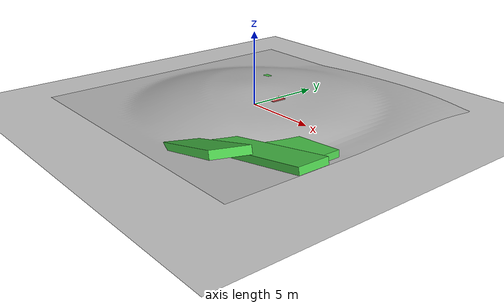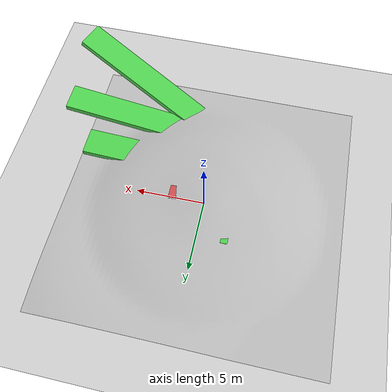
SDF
<?xml version="1.0"?>
<sdf version="1.6">
  <world name="test_world">
    <!-- Physics -->
    <physics type="ode">
      <max_step_size>0.001</max_step_size>
      <real_time_factor>1</real_time_factor>
      <real_time_update_rate>1000</real_time_update_rate>
    </physics>

    <!-- Lighting -->
    <include>
      <uri>model://sun</uri>
    </include>

    <!-- Ground Plane -->
    <include>
      <uri>model://ground_plane</uri>
    </include>

    <!-- Add some obstacles for testing -->
    <model name="box1">
      <pose>2 0 0.5 0 0 0</pose>
      <static>true</static>
      <link name="link">
        <collision name="collision">
          <geometry>
            <box>
              <size>1 1 1</size>
            </box>
          </geometry>
        </collision>
        <visual name="visual">
          <geometry>
            <box>
              <size>1 1 1</size>
            </box>
          </geometry>
          <material>
            <ambient>0.8 0.3 0.3 1</ambient>
            <diffuse>0.8 0.3 0.3 1</diffuse>
          </material>
        </visual>
      </link>
    </model>

    <model name="box2">
      <pose>-2 2 0.5 0 0 0</pose>
      <static>true</static>
      <link name="link">
        <collision name="collision">
          <geometry>
            <box>
              <size>0.5 2 1</size>
            </box>
          </geometry>
        </collision>
        <visual name="visual">
          <geometry>
            <box>
              <size>0.5 2 1</size>
            </box>
          </geometry>
          <material>
            <ambient>0.3 0.8 0.3 1</ambient>
            <diffuse>0.3 0.8 0.3 1</diffuse>
          </material>
        </visual>
      </link>
    </model>

    <model name="cylinder1">
      <pose>0 -3 0.5 0 0 0</pose>
      <static>true</static>
      <link name="link">
        <collision name="collision">
          <geometry>
            <cylinder>
              <radius>0.5</radius>
              <length>1</length>
            </cylinder>
          </geometry>
        </collision>
        <visual name="visual">
          <geometry>
            <cylinder>
              <radius>0.5</radius>
              <length>1</length>
            </cylinder>
          </geometry>
          <material>
            <ambient>0.3 0.3 0.8 1</ambient>
            <diffuse>0.3 0.3 0.8 1</diffuse>
          </material>
        </visual>
      </link>
    </model>

    <!--Ramps for height costmap testing-->
    <model name="ramp1">
      <pose>5.945485 -3.042967 0.071873 0.002354 -0.074159 -0.000175</pose>
      <static>true</static>
      <link name="link">
        <collision name="collision">
          <geometry>
            <box>
              <size>7.764390 2.003820 0.439108</size>
            </box>
          </geometry>
        </collision>
        <visual name="visual">
          <geometry>
            <box>
              <size>7.764390 2.003820 0.439108</size>
            </box>
          </geometry>
          <material>
            <ambient>0.3 0.8 0.3 1</ambient>
            <diffuse>0.3 0.8 0.3 1</diffuse>
          </material>
        </visual>
      </link>
    </model>

    <model name="ramp2">
      <pose>6.304507 -5.965746 0.530079 0.001361 -0.175217 -0.002422</pose>
      <static>true</static>
      <link name="link">
        <collision name="collision">
          <geometry>
            <box>
              <size>11.3662 2 0.439</size>
            </box>
          </geometry>
        </collision>
        <visual name="visual">
          <geometry>
            <box>
              <size>11.3662 2 0.439</size>
            </box>
          </geometry>
          <material>
            <ambient>0.3 0.8 0.3 1</ambient>
            <diffuse>0.3 0.8 0.3 1</diffuse>
          </material>
        </visual>
      </link>
    </model>

    <model name="ramp3">
      <pose>6.481330 -8.924390 1.500831 -0.005991 -0.347095 -0.347095</pose>
      <static>true</static>
      <link name="link">
        <collision name="collision">
          <geometry>
            <box>
              <size>11.3662 2 0.439</size>
            </box>
          </geometry>
        </collision>
        <visual name="visual">
          <geometry>
            <box>
              <size>11.3662 2 0.439</size>
            </box>
          </geometry>
          <material>
            <ambient>0.3 0.8 0.3 1</ambient>
            <diffuse>0.3 0.8 0.3 1</diffuse>
          </material>
        </visual>
      </link>
    </model>

    <include>
      <uri>model://my_hill</uri>
      <pose>0 0 0 0 0 0</pose>
    </include>

  </world>
</sdf>

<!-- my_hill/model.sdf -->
<sdf version="1.6">
  <model name="my_hill">
    <static>true</static>
    <link name="link">
      <collision name="collision">
        <geometry><mesh><uri>model://my_hill/meshes/Untitled.stl</uri></mesh></geometry>
      </collision>
      <visual name="visual">
        <geometry><mesh><uri>model://my_hill/meshes/Untitled.stl</uri></mesh></geometry>
      </visual>
    </link>
  </model>
</sdf>
